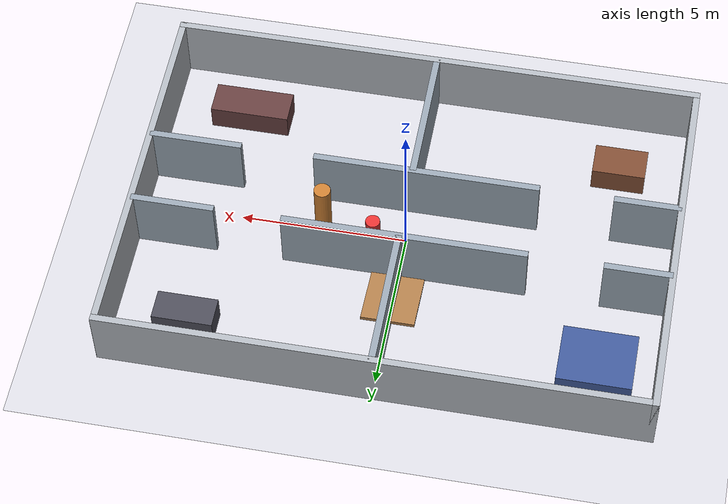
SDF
<?xml version="1.0" ?>
<sdf version="1.6">
  <world name="gracemo_apartment">

    <physics name="1ms" type="ignored">
      <max_step_size>0.002</max_step_size>
      <real_time_factor>1.0</real_time_factor>
    </physics>

    <!-- World System Plugins -->
    <plugin filename="gz-sim-physics-system" name="gz::sim::systems::Physics"/>
    <plugin filename="gz-sim-user-commands-system" name="gz::sim::systems::UserCommands"/>
    <plugin filename="gz-sim-scene-broadcaster-system" name="gz::sim::systems::SceneBroadcaster"/>
    <plugin filename="gz-sim-sensors-system" name="gz::sim::systems::Sensors">
      <render_engine>ogre2</render_engine>
    </plugin>
    <plugin filename="gz-sim-imu-system" name="gz::sim::systems::Imu"/>
    <plugin filename="gz-sim-contact-system" name="gz::sim::systems::Contact"/>

    <scene>
      <ambient>0.6 0.6 0.6 1.0</ambient>
      <background>0.3 0.35 0.4 1.0</background>
      <shadows>false</shadows>
    </scene>

    <gui fullscreen="0">
      <camera name="user_camera">
        <pose>0.0 -7.0 12.0 0 1.0 1.57</pose>
        <view_controller>orbit</view_controller>
        <projection_type>perspective</projection_type>
      </camera>
    </gui>

    <!-- Sun Light -->
    <light type="directional" name="sun">
      <cast_shadows>false</cast_shadows>
      <pose>0 0 15 0 0 0</pose>
      <diffuse>0.9 0.9 0.9 1</diffuse>
      <specular>0.2 0.2 0.2 1</specular>
      <direction>-0.3 0.2 -0.9</direction>
    </light>

    <!-- Ground Plane -->
    <model name="ground_plane">
      <static>true</static>
      <link name="link">
        <collision name="collision">
          <geometry>
            <plane>
              <normal>0 0 1</normal>
              <size>30 30</size>
            </plane>
          </geometry>
          <surface>
            <friction>
              <ode>
                <mu>1.0</mu>
                <mu2>1.0</mu2>
              </ode>
            </friction>
          </surface>
        </collision>
        <visual name="visual">
          <geometry>
            <plane>
              <normal>0 0 1</normal>
              <size>30 30</size>
            </plane>
          </geometry>
          <material>
            <ambient>0.85 0.85 0.88 1.0</ambient>
            <diffuse>0.85 0.85 0.88 1.0</diffuse>
          </material>
        </visual>
      </link>
    </model>

    <!-- Apartment Walls & Partitions                                         -->
    <!-- Outer Envelope: X in [-8.0, 8.0], Y in [-5.5, 5.5]                   -->
    <!-- Hallway: Y in [-1.2, 1.2], X from -7.0 to 7.0                        -->
    <model name="apartment_walls">
      <static>true</static>

      <!-- North Wall -->
      <link name="wall_north">
        <pose>0.0 5.5 1.0 0 0 0</pose>
        <collision name="c"><geometry><box><size>16.2 0.2 2.0</size></box></geometry></collision>
        <visual name="v"><geometry><box><size>16.2 0.2 2.0</size></box></geometry>
          <material><ambient>0.7 0.72 0.75 1</ambient><diffuse>0.7 0.72 0.75 1</diffuse></material>
        </visual>
      </link>

      <!-- South Wall -->
      <link name="wall_south">
        <pose>0.0 -5.5 1.0 0 0 0</pose>
        <collision name="c"><geometry><box><size>16.2 0.2 2.0</size></box></geometry></collision>
        <visual name="v"><geometry><box><size>16.2 0.2 2.0</size></box></geometry>
          <material><ambient>0.7 0.72 0.75 1</ambient><diffuse>0.7 0.72 0.75 1</diffuse></material>
        </visual>
      </link>

      <!-- West Wall -->
      <link name="wall_west">
        <pose>-8.0 0.0 1.0 0 0 0</pose>
        <collision name="c"><geometry><box><size>0.2 11.2 2.0</size></box></geometry></collision>
        <visual name="v"><geometry><box><size>0.2 11.2 2.0</size></box></geometry>
          <material><ambient>0.7 0.72 0.75 1</ambient><diffuse>0.7 0.72 0.75 1</diffuse></material>
        </visual>
      </link>

      <!-- East Wall -->
      <link name="wall_east">
        <pose>8.0 0.0 1.0 0 0 0</pose>
        <collision name="c"><geometry><box><size>0.2 11.2 2.0</size></box></geometry></collision>
        <visual name="v"><geometry><box><size>0.2 11.2 2.0</size></box></geometry>
          <material><ambient>0.7 0.72 0.75 1</ambient><diffuse>0.7 0.72 0.75 1</diffuse></material>
        </visual>
      </link>

      <!-- Hallway North Dividing Wall (West Section: -8.0 to -6.0) -->
      <link name="hallway_north_west">
        <pose>-7.0 1.2 1.0 0 0 0</pose>
        <collision name="c"><geometry><box><size>2.0 0.2 2.0</size></box></geometry></collision>
        <visual name="v"><geometry><box><size>2.0 0.2 2.0</size></box></geometry>
          <material><ambient>0.6 0.65 0.7 1</ambient><diffuse>0.6 0.65 0.7 1</diffuse></material>
        </visual>
      </link>

      <!-- Hallway North Dividing Wall (Center Section: -3.8 to 3.5) -->
      <link name="hallway_north_center">
        <pose>-0.15 1.2 1.0 0 0 0</pose>
        <collision name="c"><geometry><box><size>7.3 0.2 2.0</size></box></geometry></collision>
        <visual name="v"><geometry><box><size>7.3 0.2 2.0</size></box></geometry>
          <material><ambient>0.6 0.65 0.7 1</ambient><diffuse>0.6 0.65 0.7 1</diffuse></material>
        </visual>
      </link>

      <!-- Hallway North Dividing Wall (East Section: 5.5 to 8.0) -->
      <link name="hallway_north_east">
        <pose>6.75 1.2 1.0 0 0 0</pose>
        <collision name="c"><geometry><box><size>2.5 0.2 2.0</size></box></geometry></collision>
        <visual name="v"><geometry><box><size>2.5 0.2 2.0</size></box></geometry>
          <material><ambient>0.6 0.65 0.7 1</ambient><diffuse>0.6 0.65 0.7 1</diffuse></material>
        </visual>
      </link>

      <!-- Hallway South Dividing Wall (West Section: -8.0 to -6.0) -->
      <link name="hallway_south_west">
        <pose>-7.0 -1.2 1.0 0 0 0</pose>
        <collision name="c"><geometry><box><size>2.0 0.2 2.0</size></box></geometry></collision>
        <visual name="v"><geometry><box><size>2.0 0.2 2.0</size></box></geometry>
          <material><ambient>0.6 0.65 0.7 1</ambient><diffuse>0.6 0.65 0.7 1</diffuse></material>
        </visual>
      </link>

      <!-- Hallway South Dividing Wall (Center Section: -3.8 to 3.0) -->
      <link name="hallway_south_center">
        <pose>-0.4 -1.2 1.0 0 0 0</pose>
        <collision name="c"><geometry><box><size>6.8 0.2 2.0</size></box></geometry></collision>
        <visual name="v"><geometry><box><size>6.8 0.2 2.0</size></box></geometry>
          <material><ambient>0.6 0.65 0.7 1</ambient><diffuse>0.6 0.65 0.7 1</diffuse></material>
        </visual>
      </link>

      <!-- Hallway South Dividing Wall (East Section: 5.2 to 8.0) -->
      <link name="hallway_south_east">
        <pose>6.6 -1.2 1.0 0 0 0</pose>
        <collision name="c"><geometry><box><size>2.8 0.2 2.0</size></box></geometry></collision>
        <visual name="v"><geometry><box><size>2.8 0.2 2.0</size></box></geometry>
          <material><ambient>0.6 0.65 0.7 1</ambient><diffuse>0.6 0.65 0.7 1</diffuse></material>
        </visual>
      </link>

      <!-- North Divider between Bedroom and Study (at X=0.0, Y: 1.2 to 5.5) -->
      <link name="divider_north">
        <pose>0.0 3.35 1.0 0 0 0</pose>
        <collision name="c"><geometry><box><size>0.2 4.3 2.0</size></box></geometry></collision>
        <visual name="v"><geometry><box><size>0.2 4.3 2.0</size></box></geometry>
          <material><ambient>0.6 0.65 0.7 1</ambient><diffuse>0.6 0.65 0.7 1</diffuse></material>
        </visual>
      </link>

      <!-- South Divider between Kitchen and Living Room (at X=0.0, Y: -5.5 to -1.2) -->
      <link name="divider_south">
        <pose>0.0 -3.35 1.0 0 0 0</pose>
        <collision name="c"><geometry><box><size>0.2 4.3 2.0</size></box></geometry></collision>
        <visual name="v"><geometry><box><size>0.2 4.3 2.0</size></box></geometry>
          <material><ambient>0.6 0.65 0.7 1</ambient><diffuse>0.6 0.65 0.7 1</diffuse></material>
        </visual>
      </link>
    </model>

    <!-- Furniture Obstacles for LiDAR Perception & Obstacle Avoidance        -->
    <!-- Kitchen Dining Table -->
    <model name="kitchen_table">
      <static>true</static>
      <pose>-6.0 -3.5 0.4 0 0 0</pose>
      <link name="link">
        <collision name="c"><geometry><box><size>1.6 1.0 0.8</size></box></geometry></collision>
        <visual name="v"><geometry><box><size>1.6 1.0 0.8</size></box></geometry>
          <material><ambient>0.4 0.25 0.15 1</ambient><diffuse>0.5 0.3 0.2 1</diffuse></material>
        </visual>
      </link>
    </model>

    <!-- Master Bedroom Bed -->
    <model name="bedroom_bed">
      <static>true</static>
      <pose>-6.2 3.5 0.35 0 0 0</pose>
      <link name="link">
        <collision name="c"><geometry><box><size>2.2 1.8 0.7</size></box></geometry></collision>
        <visual name="v"><geometry><box><size>2.2 1.8 0.7</size></box></geometry>
          <material><ambient>0.2 0.3 0.5 1</ambient><diffuse>0.25 0.35 0.6 1</diffuse></material>
        </visual>
      </link>
    </model>

    <!-- Living Room Sofa -->
    <model name="living_sofa">
      <static>true</static>
      <pose>5.5 -3.8 0.4 0 0 0</pose>
      <link name="link">
        <collision name="c"><geometry><box><size>2.4 1.0 0.8</size></box></geometry></collision>
        <visual name="v"><geometry><box><size>2.4 1.0 0.8</size></box></geometry>
          <material><ambient>0.3 0.2 0.2 1</ambient><diffuse>0.4 0.25 0.25 1</diffuse></material>
        </visual>
      </link>
    </model>

    <!-- Study Desk -->
    <model name="study_desk">
      <static>true</static>
      <pose>5.8 4.0 0.4 0 0 0</pose>
      <link name="link">
        <collision name="c"><geometry><box><size>1.8 0.9 0.8</size></box></geometry></collision>
        <visual name="v"><geometry><box><size>1.8 0.9 0.8</size></box></geometry>
          <material><ambient>0.25 0.25 0.3 1</ambient><diffuse>0.3 0.3 0.35 1</diffuse></material>
        </visual>
      </link>
    </model>

    <!-- Corridor Column / Landmark Obstacle -->
    <model name="hallway_pillar">
      <static>true</static>
      <pose>2.5 0.0 1.0 0 0 0</pose>
      <link name="link">
        <collision name="c"><geometry><cylinder><radius>0.25</radius><length>2.0</length></cylinder></geometry></collision>
        <visual name="v"><geometry><cylinder><radius>0.25</radius><length>2.0</length></cylinder></geometry>
          <material><ambient>0.8 0.5 0.2 1</ambient><diffuse>0.8 0.5 0.2 1</diffuse></material>
        </visual>
      </link>
    </model>

    <!-- Terrain Awareness Test Feature: Inclined Ramp & Uneven Surface      -->
    <model name="terrain_test_ramp">
      <static>true</static>
      <pose>0.0 2.2 0.12 0.14 0 0</pose>
      <link name="link">
        <collision name="c">
          <geometry><box><size>1.6 1.8 0.10</size></box></geometry>
        </collision>
        <visual name="v">
          <geometry><box><size>1.6 1.8 0.10</size></box></geometry>
          <material>
            <ambient>0.6 0.4 0.2 1</ambient>
            <diffuse>0.7 0.5 0.3 1</diffuse>
          </material>
        </visual>
      </link>
    </model>

    <!-- Dynamic Simulated Obstacle for Dynamic Avoidance Scenarios          -->
    <model name="dynamic_obstacle">
      <static>false</static>
      <pose>1.0 0.0 0.4 0 0 0</pose>
      <link name="link">
        <inertial>
          <mass>10.0</mass>
          <inertia>
            <ixx>0.5</ixx><ixy>0</ixy><ixz>0</ixz>
            <iyy>0.5</iyy><iyz>0</iyz><izz>0.2</izz>
          </inertia>
        </inertial>
        <collision name="c">
          <geometry><cylinder><radius>0.22</radius><length>0.8</length></cylinder></geometry>
        </collision>
        <visual name="v">
          <geometry><cylinder><radius>0.22</radius><length>0.8</length></cylinder></geometry>
          <material>
            <ambient>0.9 0.1 0.1 1</ambient>
            <diffuse>0.9 0.2 0.2 1</diffuse>
          </material>
        </visual>
      </link>
    </model>

  </world>
</sdf>
